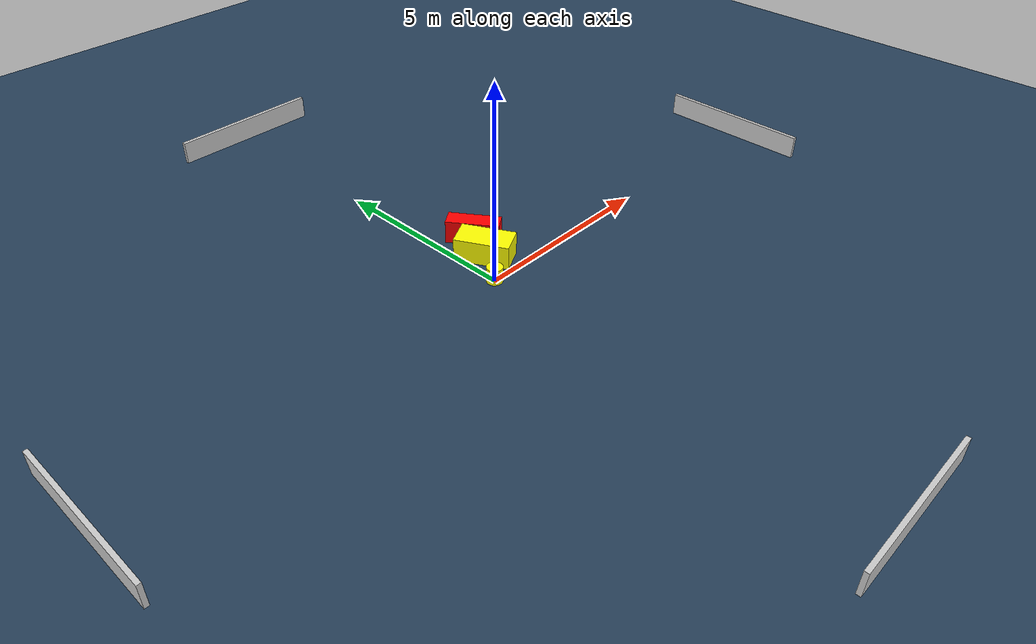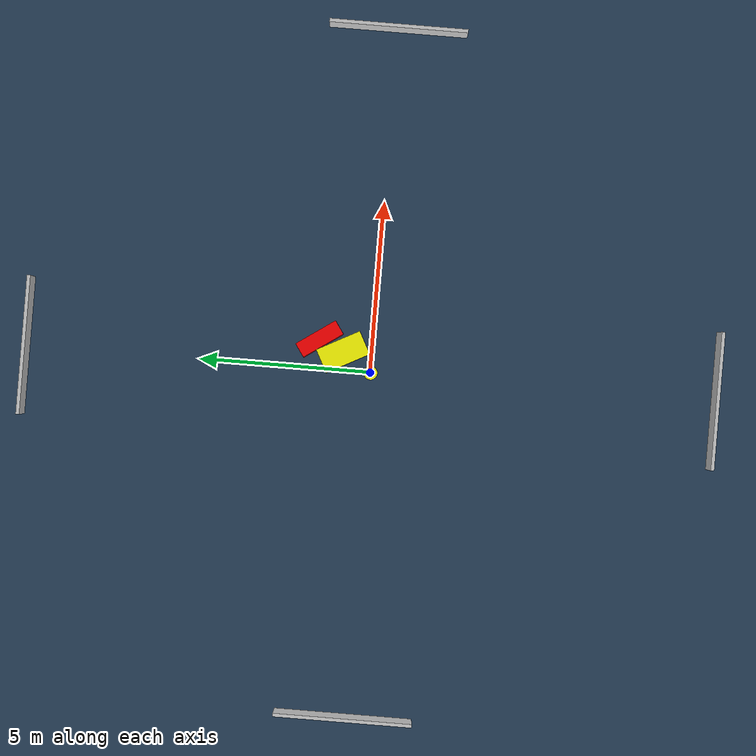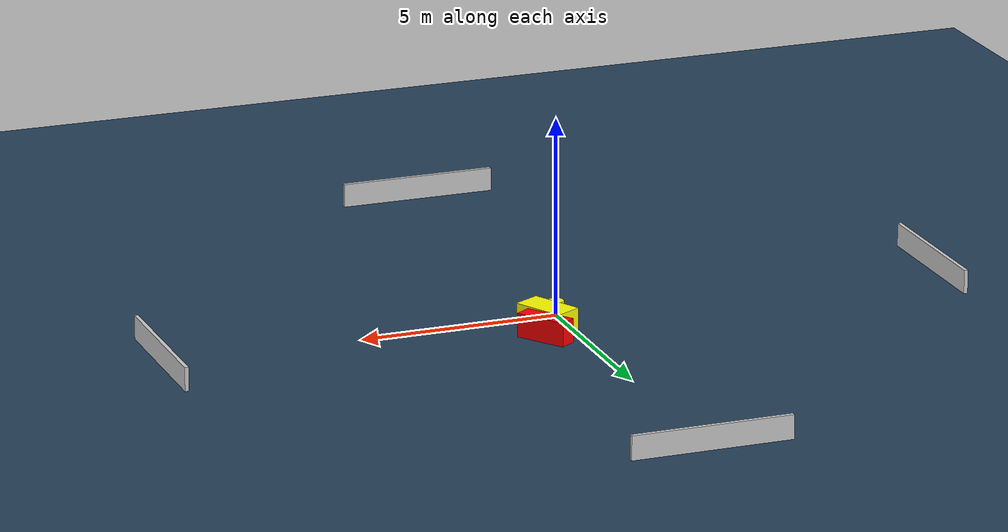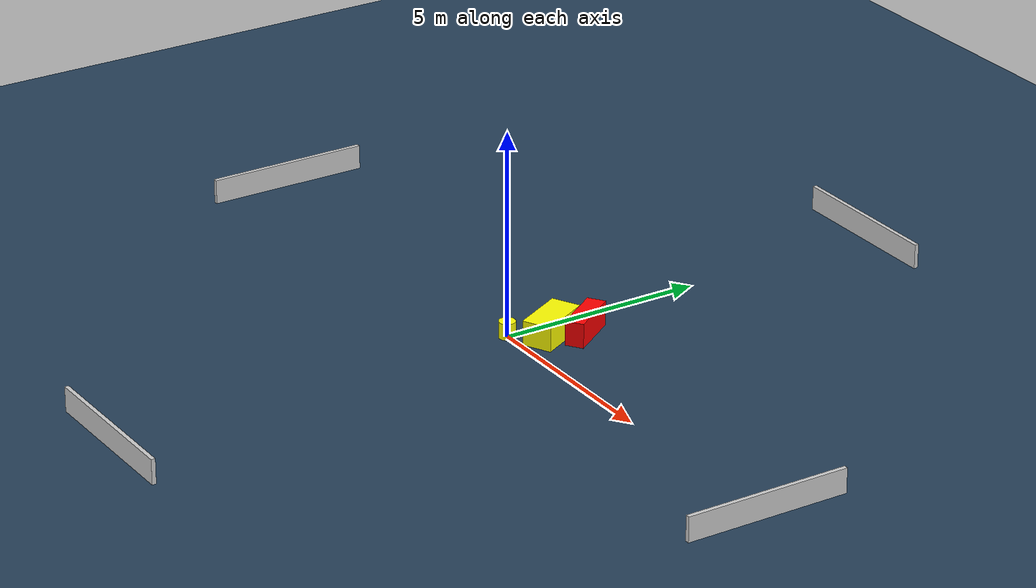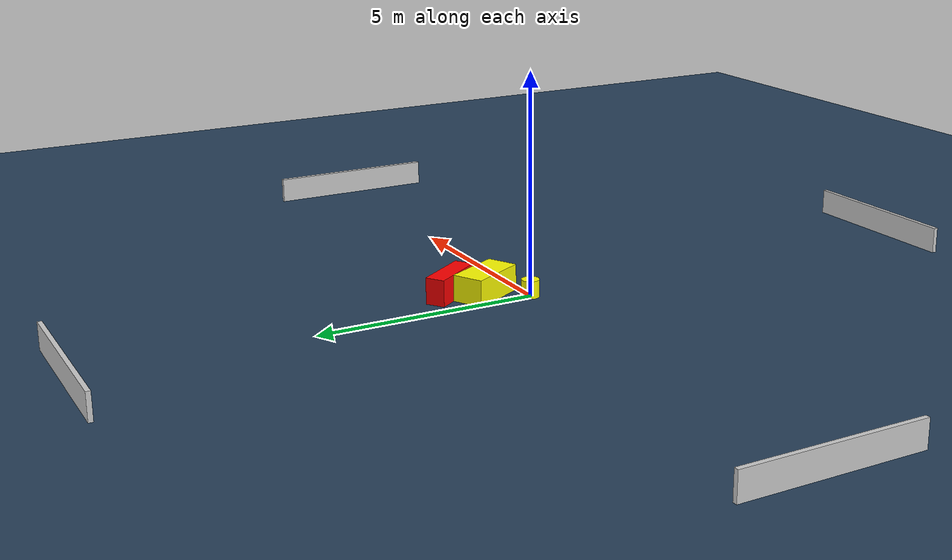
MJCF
<?xml version="1.0" ?>
<mujoco model="generated_environment">
  <option timestep="0.01" integrator="RK4" cone="elliptic"/>
  <default>
    <geom density="1"/>
  </default>
  <asset>
    <texture builtin="gradient" height="3072" name="skybox" rgb1="0.3 0.5 0.7" rgb2="0 0 0" type="skybox" width="512"/>
    <texture builtin="checker" height="300" name="groundplane" rgb1="0.2 0.3 0.4" rgb2="0.1 0.2 0.3" type="2d" width="300"/>
    <material name="groundplane" reflectance="0.2" texrepeat="5 5" texture="groundplane"/>
  </asset>
  <worldbody>
    <light dir="0 0 -1" directional="true" pos="0 0 1.5"/>
    <geom condim="3" friction="0.5 0.005 0.001" material="groundplane" name="floor" pos="0 0 0" size="0 0 0.05" type="plane"/>
    <body name="walls">
      <geom name="wall_1" condim="4" pos="-10.0 0.0 0.3" rgba="0.800000011920929 0.800000011920929 0.800000011920929 1.0" size="0.05 2.0 0.3" type="box"/>
      <geom name="wall_2" condim="4" pos="10.0 0.0 0.3" rgba="0.800000011920929 0.800000011920929 0.800000011920929 1.0" size="0.05 2.0 0.3" type="box"/>
      <geom name="wall_3" condim="4" pos="0.0 -10.0 0.3" rgba="0.800000011920929 0.800000011920929 0.800000011920929 1.0" size="2.0 0.05 0.3" type="box"/>
      <geom name="wall_4" condim="4" pos="0.0 10.0 0.3" rgba="0.800000011920929 0.800000011920929 0.800000011920929 1.0" size="2.0 0.05 0.3" type="box"/>
    </body>
    <body name="robot">
      <joint name="joint_x" type="slide" pos="0 0 0" axis="1 0 0"/>
      <joint name="joint_y" type="slide" pos="0 0 0" axis="0 1 0"/>
      <geom name="robot" type="cylinder" pos="0.0 0.0 0.2" size="0.2 0.2 0.0" mass="5.0" friction="1.0 0.005 0.0001" condim="4" rgba="1.0 1.0 0.0 1.0"/>
    </body>
    <body name="obstacle_1_movable">
      <geom name="obstacle_1_movable" condim="4" pos="0.5360905076426242 0.8356189611211613 0.3" euler="0 0 27.82870866771908" friction="0.0 0.005 0.001" rgba="1.0 1.0 0.0 1.0" size="0.3607392691984549 0.6808043233234331 0.3" type="box" mass="0.1"/>
      <joint type="free"/>
    </body>
    <body name="obstacle_2_static">
      <geom name="obstacle_2_static" condim="4" pos="0.8565611890978412 1.5391529043820866 0.3" euler="0 0 34.63351240542724" friction="0.0 0.005 0.001" rgba="1.0 0.0 0.0 1.0" size="0.22309102560050487 0.6634642495479295 0.3" type="box"/>
    </body>
  </worldbody>
  <actuator>
    <motor name="actuator_x" joint="joint_x" gear="1" ctrlrange="-1 1"/>
    <motor name="actuator_y" joint="joint_y" gear="1" ctrlrange="-1 1"/>
  </actuator>
</mujoco>
